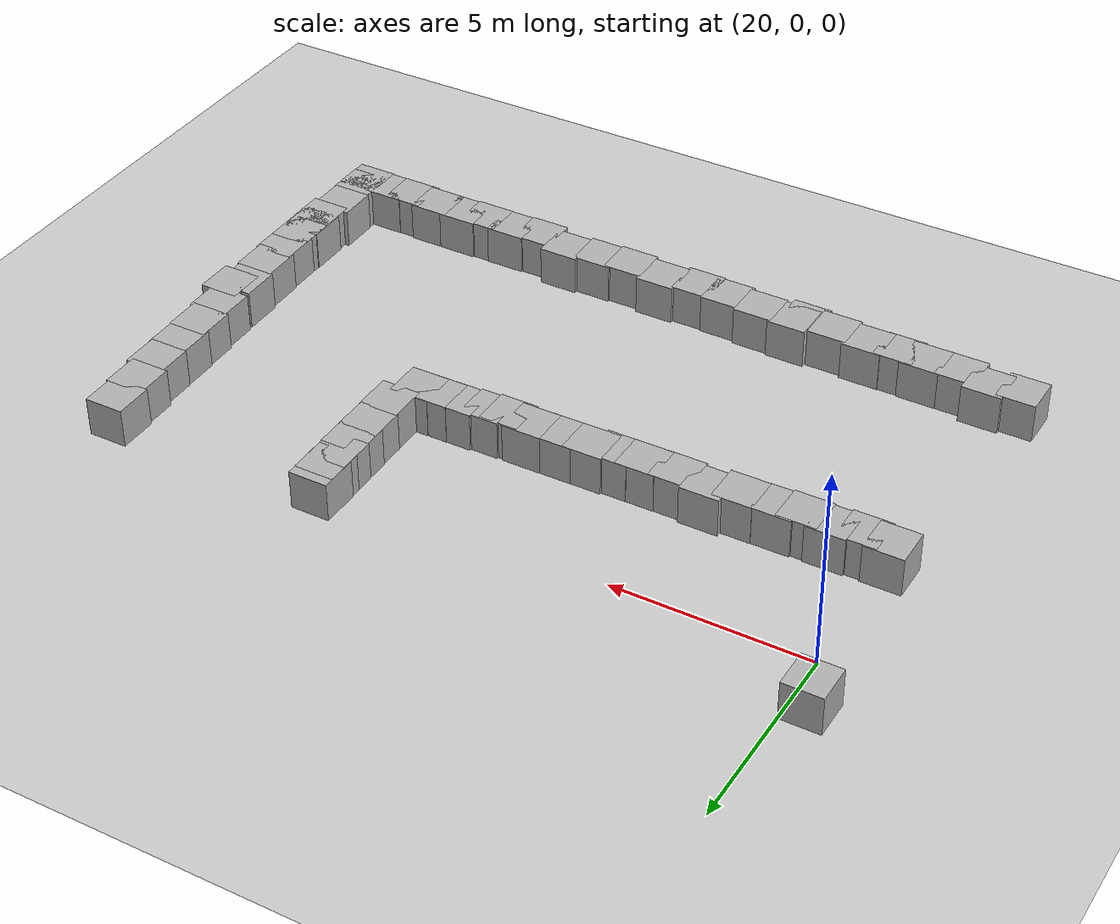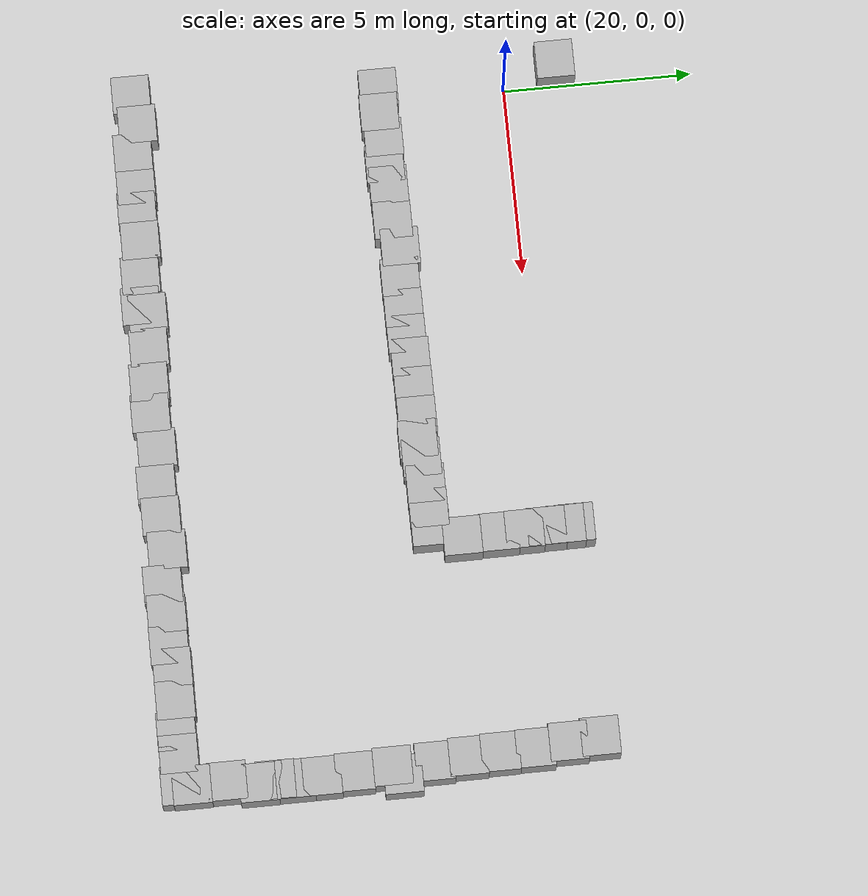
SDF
<sdf version="1.10">
 <world name="empty">
  <model name="ground_plane">
   <static>true</static>
   <link name="link">
    <collision name="collision">
     <geometry><plane><normal>0 0 1</normal><size>100 100</size></plane></geometry>
    </collision>
    <visual name="visual">
     <geometry><plane><normal>0 0 1</normal><size>100 100</size></plane></geometry>
     <material>
      <ambient>0.800000012 0.800000012 0.800000012 1</ambient>
      <diffuse>0.800000012 0.800000012 0.800000012 1</diffuse>
      <specular>0.800000012 0.800000012 0.800000012 1</specular>
     </material>
    </visual>
    <inertial>
     <mass>1</mass>
     <inertia><ixx>1</ixx><ixy>0</ixy><ixz>0</ixz><iyy>1</iyy><iyz>0</iyz><izz>1</izz></inertia>
    </inertial>
   </link>
  </model>
  <model name="box_7_426">
   <pose>19.50084535433934 1.3866616675286716 0.5 0 0 0</pose>
   <link name="box_link">
    <inertial>
     <inertia><ixx>0.16666</ixx><ixy>0</ixy><ixz>0</ixz><iyy>0.16666</iyy><iyz>0</iyz><izz>0.16666</izz></inertia>
     <mass>1</mass>
    </inertial>
    <collision name="box_collision"><geometry><box><size>1 1 1</size></box></geometry></collision>
    <visual name="box_visual">
     <geometry><box><size>1 1 1</size></box></geometry>
     <material>
      <ambient>0.300000012 0.300000012 0.300000012 1</ambient>
      <diffuse>0.699999988 0.699999988 0.699999988 1</diffuse>
      <specular>1 1 1 1</specular>
     </material>
    </visual>
   </link>
   <static>false</static>
  </model>
  <model name="box_7_485">
   <pose>19.835316685579855 -3.3367624371041389 0.5 0 0 0</pose>
   <link name="box_link">
    <inertial>
     <inertia><ixx>0.16666</ixx><ixy>0</ixy><ixz>0</ixz><iyy>0.16666</iyy><iyz>0</iyz><izz>0.16666</izz></inertia>
     <mass>1</mass>
    </inertial>
    <collision name="box_collision"><geometry><box><size>1 1 1</size></box></geometry></collision>
    <visual name="box_visual">
     <geometry><box><size>1 1 1</size></box></geometry>
     <material>
      <ambient>0.300000012 0.300000012 0.300000012 1</ambient>
      <diffuse>0.699999988 0.699999988 0.699999988 1</diffuse>
      <specular>1 1 1 1</specular>
     </material>
    </visual>
   </link>
   <static>false</static>
  </model>
  <model name="box_7_486">
   <pose>20.504908221265296 -3.3723499411950524 0.5 0 0 0</pose>
   <link name="box_link">
    <inertial>
     <inertia><ixx>0.16666</ixx><ixy>0</ixy><ixz>0</ixz><iyy>0.16666</iyy><iyz>0</iyz><izz>0.16666</izz></inertia>
     <mass>1</mass>
    </inertial>
    <collision name="box_collision"><geometry><box><size>1 1 1</size></box></geometry></collision>
    <visual name="box_visual">
     <geometry><box><size>1 1 1</size></box></geometry>
     <material>
      <ambient>0.300000012 0.300000012 0.300000012 1</ambient>
      <diffuse>0.699999988 0.699999988 0.699999988 1</diffuse>
      <specular>1 1 1 1</specular>
     </material>
    </visual>
   </link>
   <static>false</static>
  </model>
  <model name="box_7_487">
   <pose>21.206187132028163 -3.3219261980279322 0.5 0 0 0</pose>
   <link name="box_link">
    <inertial>
     <inertia><ixx>0.16666</ixx><ixy>0</ixy><ixz>0</ixz><iyy>0.16666</iyy><iyz>0</iyz><izz>0.16666</izz></inertia>
     <mass>1</mass>
    </inertial>
    <collision name="box_collision"><geometry><box><size>1 1 1</size></box></geometry></collision>
    <visual name="box_visual">
     <geometry><box><size>1 1 1</size></box></geometry>
     <material>
      <ambient>0.300000012 0.300000012 0.300000012 1</ambient>
      <diffuse>0.699999988 0.699999988 0.699999988 1</diffuse>
      <specular>1 1 1 1</specular>
     </material>
    </visual>
   </link>
   <static>false</static>
  </model>
  <model name="box_7_488">
   <pose>21.917593137765419 -3.3560273518907007 0.5 0 0 0</pose>
   <link name="box_link">
    <inertial>
     <inertia><ixx>0.16666</ixx><ixy>0</ixy><ixz>0</ixz><iyy>0.16666</iyy><iyz>0</iyz><izz>0.16666</izz></inertia>
     <mass>1</mass>
    </inertial>
    <collision name="box_collision"><geometry><box><size>1 1 1</size></box></geometry></collision>
    <visual name="box_visual">
     <geometry><box><size>1 1 1</size></box></geometry>
     <material>
      <ambient>0.300000012 0.300000012 0.300000012 1</ambient>
      <diffuse>0.699999988 0.699999988 0.699999988 1</diffuse>
      <specular>1 1 1 1</specular>
     </material>
    </visual>
   </link>
   <static>false</static>
  </model>
  <model name="box_7_489">
   <pose>22.499907543096491 -3.3070904387312154 0.5 0 0 0</pose>
   <link name="box_link">
    <inertial>
     <inertia><ixx>0.16666</ixx><ixy>0</ixy><ixz>0</ixz><iyy>0.16666</iyy><iyz>0</iyz><izz>0.16666</izz></inertia>
     <mass>1</mass>
    </inertial>
    <collision name="box_collision"><geometry><box><size>1 1 1</size></box></geometry></collision>
    <visual name="box_visual">
     <geometry><box><size>1 1 1</size></box></geometry>
     <material>
      <ambient>0.300000012 0.300000012 0.300000012 1</ambient>
      <diffuse>0.699999988 0.699999988 0.699999988 1</diffuse>
      <specular>1 1 1 1</specular>
     </material>
    </visual>
   </link>
   <static>false</static>
  </model>
  <model name="box_7_490">
   <pose>23.455362474136944 -3.296705270406294 0.5 0 0 0</pose>
   <link name="box_link">
    <inertial>
     <inertia><ixx>0.16666</ixx><ixy>0</ixy><ixz>0</ixz><iyy>0.16666</iyy><iyz>0</iyz><izz>0.16666</izz></inertia>
     <mass>1</mass>
    </inertial>
    <collision name="box_collision"><geometry><box><size>1 1 1</size></box></geometry></collision>
    <visual name="box_visual">
     <geometry><box><size>1 1 1</size></box></geometry>
     <material>
      <ambient>0.300000012 0.300000012 0.300000012 1</ambient>
      <diffuse>0.699999988 0.699999988 0.699999988 1</diffuse>
      <specular>1 1 1 1</specular>
     </material>
    </visual>
   </link>
   <static>false</static>
  </model>
  <model name="box_7_491">
   <pose>24.197470802944345 -3.1632374066188573 0.5 0 0 0</pose>
   <link name="box_link">
    <inertial>
     <inertia><ixx>0.16666</ixx><ixy>0</ixy><ixz>0</ixz><iyy>0.16666</iyy><iyz>0</iyz><izz>0.16666</izz></inertia>
     <mass>1</mass>
    </inertial>
    <collision name="box_collision"><geometry><box><size>1 1 1</size></box></geometry></collision>
    <visual name="box_visual">
     <geometry><box><size>1 1 1</size></box></geometry>
     <material>
      <ambient>0.300000012 0.300000012 0.300000012 1</ambient>
      <diffuse>0.699999988 0.699999988 0.699999988 1</diffuse>
      <specular>1 1 1 1</specular>
     </material>
    </visual>
   </link>
   <static>false</static>
  </model>
  <model name="box_7_492">
   <pose>25.01614728854755 -3.2373603021154267 0.5 0 0 0</pose>
   <link name="box_link">
    <inertial>
     <inertia><ixx>0.16666</ixx><ixy>0</ixy><ixz>0</ixz><iyy>0.16666</iyy><iyz>0</iyz><izz>0.16666</izz></inertia>
     <mass>1</mass>
    </inertial>
    <collision name="box_collision"><geometry><box><size>1 1 1</size></box></geometry></collision>
    <visual name="box_visual">
     <geometry><box><size>1 1 1</size></box></geometry>
     <material>
      <ambient>0.300000012 0.300000012 0.300000012 1</ambient>
      <diffuse>0.699999988 0.699999988 0.699999988 1</diffuse>
      <specular>1 1 1 1</specular>
     </material>
    </visual>
   </link>
   <static>false</static>
  </model>
  <model name="box_7_493">
   <pose>25.852909973870908 -3.2284585578845411 0.5 0 0 0</pose>
   <link name="box_link">
    <inertial>
     <inertia><ixx>0.16666</ixx><ixy>0</ixy><ixz>0</ixz><iyy>0.16666</iyy><iyz>0</iyz><izz>0.16666</izz></inertia>
     <mass>1</mass>
    </inertial>
    <collision name="box_collision"><geometry><box><size>1 1 1</size></box></geometry></collision>
    <visual name="box_visual">
     <geometry><box><size>1 1 1</size></box></geometry>
     <material>
      <ambient>0.300000012 0.300000012 0.300000012 1</ambient>
      <diffuse>0.699999988 0.699999988 0.699999988 1</diffuse>
      <specular>1 1 1 1</specular>
     </material>
    </visual>
   </link>
   <static>false</static>
  </model>
  <model name="box_7_494">
   <pose>26.553184559991816 -3.2210401308741492 0.5 0 0 0</pose>
   <link name="box_link">
    <inertial>
     <inertia><ixx>0.16666</ixx><ixy>0</ixy><ixz>0</ixz><iyy>0.16666</iyy><iyz>0</iyz><izz>0.16666</izz></inertia>
     <mass>1</mass>
    </inertial>
    <collision name="box_collision"><geometry><box><size>1 1 1</size></box></geometry></collision>
    <visual name="box_visual">
     <geometry><box><size>1 1 1</size></box></geometry>
     <material>
      <ambient>0.300000012 0.300000012 0.300000012 1</ambient>
      <diffuse>0.699999988 0.699999988 0.699999988 1</diffuse>
      <specular>1 1 1 1</specular>
     </material>
    </visual>
   </link>
   <static>false</static>
  </model>
  <model name="box_7_495">
   <pose>27.176025728306186 -3.1721383036013862 0.5 0 0 0</pose>
   <link name="box_link">
    <inertial>
     <inertia><ixx>0.16666</ixx><ixy>0</ixy><ixz>0</ixz><iyy>0.16666</iyy><iyz>0</iyz><izz>0.16666</izz></inertia>
     <mass>1</mass>
    </inertial>
    <collision name="box_collision"><geometry><box><size>1 1 1</size></box></geometry></collision>
    <visual name="box_visual">
     <geometry><box><size>1 1 1</size></box></geometry>
     <material>
      <ambient>0.300000012 0.300000012 0.300000012 1</ambient>
      <diffuse>0.699999988 0.699999988 0.699999988 1</diffuse>
      <specular>1 1 1 1</specular>
     </material>
    </visual>
   </link>
   <static>false</static>
  </model>
  <model name="box_7_496">
   <pose>27.965161696103269 -3.1632380496051438 0.5 0 0 0</pose>
   <link name="box_link">
    <inertial>
     <inertia><ixx>0.16666</ixx><ixy>0</ixy><ixz>0</ixz><iyy>0.16666</iyy><iyz>0</iyz><izz>0.16666</izz></inertia>
     <mass>1</mass>
    </inertial>
    <collision name="box_collision"><geometry><box><size>1 1 1</size></box></geometry></collision>
    <visual name="box_visual">
     <geometry><box><size>1 1 1</size></box></geometry>
     <material>
      <ambient>0.300000012 0.300000012 0.300000012 1</ambient>
      <diffuse>0.699999988 0.699999988 0.699999988 1</diffuse>
      <specular>1 1 1 1</specular>
     </material>
    </visual>
   </link>
   <static>false</static>
  </model>
  <model name="box_7_497">
   <pose>28.754297877944541 -3.1543385860947035 0.5 0 0 0</pose>
   <link name="box_link">
    <inertial>
     <inertia><ixx>0.16666</ixx><ixy>0</ixy><ixz>0</ixz><iyy>0.16666</iyy><iyz>0</iyz><izz>0.16666</izz></inertia>
     <mass>1</mass>
    </inertial>
    <collision name="box_collision"><geometry><box><size>1 1 1</size></box></geometry></collision>
    <visual name="box_visual">
     <geometry><box><size>1 1 1</size></box></geometry>
     <material>
      <ambient>0.300000012 0.300000012 0.300000012 1</ambient>
      <diffuse>0.699999988 0.699999988 0.699999988 1</diffuse>
      <specular>1 1 1 1</specular>
     </material>
    </visual>
   </link>
   <static>false</static>
  </model>
  <model name="box_7_498">
   <pose>29.875704523583636 -3.1439541477764958 0.5 0 0 0</pose>
   <link name="box_link">
    <inertial>
     <inertia><ixx>0.16666</ixx><ixy>0</ixy><ixz>0</ixz><iyy>0.16666</iyy><iyz>0</iyz><izz>0.16666</izz></inertia>
     <mass>1</mass>
    </inertial>
    <collision name="box_collision"><geometry><box><size>1 1 1</size></box></geometry></collision>
    <visual name="box_visual">
     <geometry><box><size>1 1 1</size></box></geometry>
     <material>
      <ambient>0.300000012 0.300000012 0.300000012 1</ambient>
      <diffuse>0.699999988 0.699999988 0.699999988 1</diffuse>
      <specular>1 1 1 1</specular>
     </material>
    </visual>
   </link>
   <static>false</static>
  </model>
  <model name="box_7_499">
   <pose>29.378009536321446 -3.1913672510760609 0.5 0 0 0</pose>
   <link name="box_link">
    <inertial>
     <inertia><ixx>0.16666</ixx><ixy>0</ixy><ixz>0</ixz><iyy>0.16666</iyy><iyz>0</iyz><izz>0.16666</izz></inertia>
     <mass>1</mass>
    </inertial>
    <collision name="box_collision"><geometry><box><size>1 1 1</size></box></geometry></collision>
    <visual name="box_visual">
     <geometry><box><size>1 1 1</size></box></geometry>
     <material>
      <ambient>0.300000012 0.300000012 0.300000012 1</ambient>
      <diffuse>0.699999988 0.699999988 0.699999988 1</diffuse>
      <specular>1 1 1 1</specular>
     </material>
    </visual>
   </link>
   <static>false</static>
  </model>
  <model name="box_7_500">
   <pose>30.581775230020487 -3.0950032706503423 0.5 0 0 0</pose>
   <link name="box_link">
    <inertial>
     <inertia><ixx>0.16666</ixx><ixy>0</ixy><ixz>0</ixz><iyy>0.16666</iyy><iyz>0</iyz><izz>0.16666</izz></inertia>
     <mass>1</mass>
    </inertial>
    <collision name="box_collision"><geometry><box><size>1 1 1</size></box></geometry></collision>
    <visual name="box_visual">
     <geometry><box><size>1 1 1</size></box></geometry>
     <material>
      <ambient>0.300000012 0.300000012 0.300000012 1</ambient>
      <diffuse>0.699999988 0.699999988 0.699999988 1</diffuse>
      <specular>1 1 1 1</specular>
     </material>
    </visual>
   </link>
   <static>false</static>
  </model>
  <model name="box_7_501">
   <pose>31.234449285838345 -3.0861042777483636 0.5 0 0 0</pose>
   <link name="box_link">
    <inertial>
     <inertia><ixx>0.16666</ixx><ixy>0</ixy><ixz>0</ixz><iyy>0.16666</iyy><iyz>0</iyz><izz>0.16666</izz></inertia>
     <mass>1</mass>
    </inertial>
    <collision name="box_collision"><geometry><box><size>1 1 1</size></box></geometry></collision>
    <visual name="box_visual">
     <geometry><box><size>1 1 1</size></box></geometry>
     <material>
      <ambient>0.300000012 0.300000012 0.300000012 1</ambient>
      <diffuse>0.699999988 0.699999988 0.699999988 1</diffuse>
      <specular>1 1 1 1</specular>
     </material>
    </visual>
   </link>
   <static>false</static>
  </model>
  <model name="box_7_502">
   <pose>31.732852454886775 -3.0801706274004861 0.5 0 0 0</pose>
   <link name="box_link">
    <inertial>
     <inertia><ixx>0.16666</ixx><ixy>0</ixy><ixz>0</ixz><iyy>0.16666</iyy><iyz>0</iyz><izz>0.16666</izz></inertia>
     <mass>1</mass>
    </inertial>
    <collision name="box_collision"><geometry><box><size>1 1 1</size></box></geometry></collision>
    <visual name="box_visual">
     <geometry><box><size>1 1 1</size></box></geometry>
     <material>
      <ambient>0.300000012 0.300000012 0.300000012 1</ambient>
      <diffuse>0.699999988 0.699999988 0.699999988 1</diffuse>
      <specular>1 1 1 1</specular>
     </material>
    </visual>
   </link>
   <static>false</static>
  </model>
  <model name="box_7_503">
   <pose>32.050619882522398 -2.2822564611692648 0.5 0 0 0</pose>
   <link name="box_link">
    <inertial>
     <inertia><ixx>0.16666</ixx><ixy>0</ixy><ixz>0</ixz><iyy>0.16666</iyy><iyz>0</iyz><izz>0.16666</izz></inertia>
     <mass>1</mass>
    </inertial>
    <collision name="box_collision"><geometry><box><size>1 1 1</size></box></geometry></collision>
    <visual name="box_visual">
     <geometry><box><size>1 1 1</size></box></geometry>
     <material>
      <ambient>0.300000012 0.300000012 0.300000012 1</ambient>
      <diffuse>0.699999988 0.699999988 0.699999988 1</diffuse>
      <specular>1 1 1 1</specular>
     </material>
    </visual>
   </link>
   <static>false</static>
  </model>
  <model name="box_7_504">
   <pose>32.032506917108243 -1.3205692684281383 0.5 0 0 0</pose>
   <link name="box_link">
    <inertial>
     <inertia><ixx>0.16666</ixx><ixy>0</ixy><ixz>0</ixz><iyy>0.16666</iyy><iyz>0</iyz><izz>0.16666</izz></inertia>
     <mass>1</mass>
    </inertial>
    <collision name="box_collision"><geometry><box><size>1 1 1</size></box></geometry></collision>
    <visual name="box_visual">
     <geometry><box><size>1 1 1</size></box></geometry>
     <material>
      <ambient>0.300000012 0.300000012 0.300000012 1</ambient>
      <diffuse>0.699999988 0.699999988 0.699999988 1</diffuse>
      <specular>1 1 1 1</specular>
     </material>
    </visual>
   </link>
   <static>false</static>
  </model>
  <model name="box_7_505">
   <pose>32.019311008043815 -0.65554212112585475 0.5 0 0 0</pose>
   <link name="box_link">
    <inertial>
     <inertia><ixx>0.16666</ixx><ixy>0</ixy><ixz>0</ixz><iyy>0.16666</iyy><iyz>0</iyz><izz>0.16666</izz></inertia>
     <mass>1</mass>
    </inertial>
    <collision name="box_collision"><geometry><box><size>1 1 1</size></box></geometry></collision>
    <visual name="box_visual">
     <geometry><box><size>1 1 1</size></box></geometry>
     <material>
      <ambient>0.300000012 0.300000012 0.300000012 1</ambient>
      <diffuse>0.699999988 0.699999988 0.699999988 1</diffuse>
      <specular>1 1 1 1</specular>
     </material>
    </visual>
   </link>
   <static>false</static>
  </model>
  <model name="box_7_506">
   <pose>32.002660628489288 -0.076296948211255433 0.5 0 0 0</pose>
   <link name="box_link">
    <inertial>
     <inertia><ixx>0.16666</ixx><ixy>0</ixy><ixz>0</ixz><iyy>0.16666</iyy><iyz>0</iyz><izz>0.16666</izz></inertia>
     <mass>1</mass>
    </inertial>
    <collision name="box_collision"><geometry><box><size>1 1 1</size></box></geometry></collision>
    <visual name="box_visual">
     <geometry><box><size>1 1 1</size></box></geometry>
     <material>
      <ambient>0.300000012 0.300000012 0.300000012 1</ambient>
      <diffuse>0.699999988 0.699999988 0.699999988 1</diffuse>
      <specular>1 1 1 1</specular>
     </material>
    </visual>
   </link>
   <static>false</static>
  </model>
  <model name="box_7_507">
   <pose>31.995419167254532 0.42241330259520327 0.5 0 0 0</pose>
   <link name="box_link">
    <inertial>
     <inertia><ixx>0.16666</ixx><ixy>0</ixy><ixz>0</ixz><iyy>0.16666</iyy><iyz>0</iyz><izz>0.16666</izz></inertia>
     <mass>1</mass>
    </inertial>
    <collision name="box_collision"><geometry><box><size>1 1 1</size></box></geometry></collision>
    <visual name="box_visual">
     <geometry><box><size>1 1 1</size></box></geometry>
     <material>
      <ambient>0.300000012 0.300000012 0.300000012 1</ambient>
      <diffuse>0.699999988 0.699999988 0.699999988 1</diffuse>
      <specular>1 1 1 1</specular>
     </material>
    </visual>
   </link>
   <static>false</static>
  </model>
  <model name="box_7_508">
   <pose>31.987117330431637 0.66992297948979251 0.5 0 0 0</pose>
   <link name="box_link">
    <inertial>
     <inertia><ixx>0.16666</ixx><ixy>0</ixy><ixz>0</ixz><iyy>0.16666</iyy><iyz>0</iyz><izz>0.16666</izz></inertia>
     <mass>1</mass>
    </inertial>
    <collision name="box_collision"><geometry><box><size>1 1 1</size></box></geometry></collision>
    <visual name="box_visual">
     <geometry><box><size>1 1 1</size></box></geometry>
     <material>
      <ambient>0.300000012 0.300000012 0.300000012 1</ambient>
      <diffuse>0.699999988 0.699999988 0.699999988 1</diffuse>
      <specular>1 1 1 1</specular>
     </material>
    </visual>
   </link>
   <static>false</static>
  </model>
  <model name="box_7_510">
   <pose>37.62682388788928 0.75644193351323619 0.5 0 0 0</pose>
   <link name="box_link">
    <inertial>
     <inertia><ixx>0.16666</ixx><ixy>0</ixy><ixz>0</ixz><iyy>0.16666</iyy><iyz>0</iyz><izz>0.16666</izz></inertia>
     <mass>1</mass>
    </inertial>
    <collision name="box_collision"><geometry><box><size>1 1 1</size></box></geometry></collision>
    <visual name="box_visual">
     <geometry><box><size>1 1 1</size></box></geometry>
     <material>
      <ambient>0.300000012 0.300000012 0.300000012 1</ambient>
      <diffuse>0.699999988 0.699999988 0.699999988 1</diffuse>
      <specular>1 1 1 1</specular>
     </material>
    </visual>
   </link>
   <static>false</static>
  </model>
  <model name="box_7_511">
   <pose>37.680546073106434 -0.069666408435608229 0.5 0 0 0</pose>
   <link name="box_link">
    <inertial>
     <inertia><ixx>0.16666</ixx><ixy>0</ixy><ixz>0</ixz><iyy>0.16666</iyy><iyz>0</iyz><izz>0.16666</izz></inertia>
     <mass>1</mass>
    </inertial>
    <collision name="box_collision"><geometry><box><size>1 1 1</size></box></geometry></collision>
    <visual name="box_visual">
     <geometry><box><size>1 1 1</size></box></geometry>
     <material>
      <ambient>0.300000012 0.300000012 0.300000012 1</ambient>
      <diffuse>0.699999988 0.699999988 0.699999988 1</diffuse>
      <specular>1 1 1 1</specular>
     </material>
    </visual>
   </link>
   <static>false</static>
  </model>
  <model name="box_7_512">
   <pose>37.771591950479184 -0.93952264910955829 0.5 0 0 0</pose>
   <link name="box_link">
    <inertial>
     <inertia><ixx>0.16666</ixx><ixy>0</ixy><ixz>0</ixz><iyy>0.16666</iyy><iyz>0</iyz><izz>0.16666</izz></inertia>
     <mass>1</mass>
    </inertial>
    <collision name="box_collision"><geometry><box><size>1 1 1</size></box></geometry></collision>
    <visual name="box_visual">
     <geometry><box><size>1 1 1</size></box></geometry>
     <material>
      <ambient>0.300000012 0.300000012 0.300000012 1</ambient>
      <diffuse>0.699999988 0.699999988 0.699999988 1</diffuse>
      <specular>1 1 1 1</specular>
     </material>
    </visual>
   </link>
   <static>false</static>
  </model>
  <model name="box_7_513">
   <pose>37.789335657210316 -1.8524514860703727 0.5 0 0 0</pose>
   <link name="box_link">
    <inertial>
     <inertia><ixx>0.16666</ixx><ixy>0</ixy><ixz>0</ixz><iyy>0.16666</iyy><iyz>0</iyz><izz>0.16666</izz></inertia>
     <mass>1</mass>
    </inertial>
    <collision name="box_collision"><geometry><box><size>1 1 1</size></box></geometry></collision>
    <visual name="box_visual">
     <geometry><box><size>1 1 1</size></box></geometry>
     <material>
      <ambient>0.300000012 0.300000012 0.300000012 1</ambient>
      <diffuse>0.699999988 0.699999988 0.699999988 1</diffuse>
      <specular>1 1 1 1</specular>
     </material>
    </visual>
   </link>
   <static>false</static>
  </model>
  <model name="box_7_514">
   <pose>37.819833014596696 -2.6858046116926229 0.5 0 0 0</pose>
   <link name="box_link">
    <inertial>
     <inertia><ixx>0.16666</ixx><ixy>0</ixy><ixz>0</ixz><iyy>0.16666</iyy><iyz>0</iyz><izz>0.16666</izz></inertia>
     <mass>1</mass>
    </inertial>
    <collision name="box_collision"><geometry><box><size>1 1 1</size></box></geometry></collision>
    <visual name="box_visual">
     <geometry><box><size>1 1 1</size></box></geometry>
     <material>
      <ambient>0.300000012 0.300000012 0.300000012 1</ambient>
      <diffuse>0.699999988 0.699999988 0.699999988 1</diffuse>
      <specular>1 1 1 1</specular>
     </material>
    </visual>
   </link>
   <static>false</static>
  </model>
  <model name="box_7_515">
   <pose>37.873333574441439 -3.5621481141474343 0.5 0 0 0</pose>
   <link name="box_link">
    <inertial>
     <inertia><ixx>0.16666</ixx><ixy>0</ixy><ixz>0</ixz><iyy>0.16666</iyy><iyz>0</iyz><izz>0.16666</izz></inertia>
     <mass>1</mass>
    </inertial>
    <collision name="box_collision"><geometry><box><size>1 1 1</size></box></geometry></collision>
    <visual name="box_visual">
     <geometry><box><size>1 1 1</size></box></geometry>
     <material>
      <ambient>0.300000012 0.300000012 0.300000012 1</ambient>
      <diffuse>0.699999988 0.699999988 0.699999988 1</diffuse>
      <specular>1 1 1 1</specular>
     </material>
    </visual>
   </link>
   <static>false</static>
  </model>
  <model name="box_7_516">
   <pose>37.894769195070694 -4.6545146092326455 0.5 0 0 0</pose>
   <link name="box_link">
    <inertial>
     <inertia><ixx>0.16666</ixx><ixy>0</ixy><ixz>0</ixz><iyy>0.16666</iyy><iyz>0</iyz><izz>0.16666</izz></inertia>
     <mass>1</mass>
    </inertial>
    <collision name="box_collision"><geometry><box><size>1 1 1</size></box></geometry></collision>
    <visual name="box_visual">
     <geometry><box><size>1 1 1</size></box></geometry>
     <material>
      <ambient>0.300000012 0.300000012 0.300000012 1</ambient>
      <diffuse>0.699999988 0.699999988 0.699999988 1</diffuse>
      <specular>1 1 1 1</specular>
     </material>
    </visual>
   </link>
   <static>false</static>
  </model>
  <model name="box_7_517">
   <pose>38.131023976680062 -4.4003867220660462 0.5 0 0 0</pose>
   <link name="box_link">
    <inertial>
     <inertia><ixx>0.16666</ixx><ixy>0</ixy><ixz>0</ixz><iyy>0.16666</iyy><iyz>0</iyz><izz>0.16666</izz></inertia>
     <mass>1</mass>
    </inertial>
    <collision name="box_collision"><geometry><box><size>1 1 1</size></box></geometry></collision>
    <visual name="box_visual">
     <geometry><box><size>1 1 1</size></box></geometry>
     <material>
      <ambient>0.300000012 0.300000012 0.300000012 1</ambient>
      <diffuse>0.699999988 0.699999988 0.699999988 1</diffuse>
      <specular>1 1 1 1</specular>
     </material>
    </visual>
   </link>
   <static>false</static>
  </model>
  <model name="box_7_518">
   <pose>37.948041646962125 -5.6407223219584868 0.5 0 0 0</pose>
   <link name="box_link">
    <inertial>
     <inertia><ixx>0.16666</ixx><ixy>0</ixy><ixz>0</ixz><iyy>0.16666</iyy><iyz>0</iyz><izz>0.16666</izz></inertia>
     <mass>1</mass>
    </inertial>
    <collision name="box_collision"><geometry><box><size>1 1 1</size></box></geometry></collision>
    <visual name="box_visual">
     <geometry><box><size>1 1 1</size></box></geometry>
     <material>
      <ambient>0.300000012 0.300000012 0.300000012 1</ambient>
      <diffuse>0.699999988 0.699999988 0.699999988 1</diffuse>
      <specular>1 1 1 1</specular>
     </material>
    </visual>
   </link>
   <static>false</static>
  </model>
  <model name="box_7_519">
   <pose>37.979358007607424 -6.4914270135828547 0.5 0 0 0</pose>
   <link name="box_link">
    <inertial>
     <inertia><ixx>0.16666</ixx><ixy>0</ixy><ixz>0</ixz><iyy>0.16666</iyy><iyz>0</iyz><izz>0.16666</izz></inertia>
     <mass>1</mass>
    </inertial>
    <collision name="box_collision"><geometry><box><size>1 1 1</size></box></geometry></collision>
    <visual name="box_visual">
     <geometry><box><size>1 1 1</size></box></geometry>
     <material>
      <ambient>0.300000012 0.300000012 0.300000012 1</ambient>
      <diffuse>0.699999988 0.699999988 0.699999988 1</diffuse>
      <specular>1 1 1 1</specular>
     </material>
    </visual>
   </link>
   <static>false</static>
  </model>
  <model name="box_7_520">
   <pose>37.98140610669045 -7.1881874978806453 0.5 0 0 0</pose>
   <link name="box_link">
    <inertial>
     <inertia><ixx>0.16666</ixx><ixy>0</ixy><ixz>0</ixz><iyy>0.16666</iyy><iyz>0</iyz><izz>0.16666</izz></inertia>
     <mass>1</mass>
    </inertial>
    <collision name="box_collision"><geometry><box><size>1 1 1</size></box></geometry></collision>
    <visual name="box_visual">
     <geometry><box><size>1 1 1</size></box></geometry>
     <material>
      <ambient>0.300000012 0.300000012 0.300000012 1</ambient>
      <diffuse>0.699999988 0.699999988 0.699999988 1</diffuse>
      <specular>1 1 1 1</specular>
     </material>
    </visual>
   </link>
   <static>false</static>
  </model>
  <model name="box_7_521">
   <pose>37.964466239220584 -7.6882104076068289 0.5 0 0 0</pose>
   <link name="box_link">
    <inertial>
     <inertia><ixx>0.16666</ixx><ixy>0</ixy><ixz>0</ixz><iyy>0.16666</iyy><iyz>0</iyz><izz>0.16666</izz></inertia>
     <mass>1</mass>
    </inertial>
    <collision name="box_collision"><geometry><box><size>1 1 1</size></box></geometry></collision>
    <visual name="box_visual">
     <geometry><box><size>1 1 1</size></box></geometry>
     <material>
      <ambient>0.300000012 0.300000012 0.300000012 1</ambient>
      <diffuse>0.699999988 0.699999988 0.699999988 1</diffuse>
      <specular>1 1 1 1</specular>
     </material>
    </visual>
   </link>
   <static>false</static>
  </model>
  <model name="box_7_522">
   <pose>37.991720077730996 -8.1286699711971835 0.5 0 0 0</pose>
   <link name="box_link">
    <inertial>
     <inertia><ixx>0.16666</ixx><ixy>0</ixy><ixz>0</ixz><iyy>0.16666</iyy><iyz>0</iyz><izz>0.16666</izz></inertia>
     <mass>1</mass>
    </inertial>
    <collision name="box_collision"><geometry><box><size>1 1 1</size></box></geometry></collision>
    <visual name="box_visual">
     <geometry><box><size>1 1 1</size></box></geometry>
     <material>
      <ambient>0.300000012 0.300000012 0.300000012 1</ambient>
      <diffuse>0.699999988 0.699999988 0.699999988 1</diffuse>
      <specular>1 1 1 1</specular>
     </material>
    </visual>
   </link>
   <static>false</static>
  </model>
  <model name="box_7_523">
   <pose>37.878462177987075 -8.9370469714732721 0.5 0 0 0</pose>
   <link name="box_link">
    <inertial>
     <inertia><ixx>0.16666</ixx><ixy>0</ixy><ixz>0</ixz><iyy>0.16666</iyy><iyz>0</iyz><izz>0.16666</izz></inertia>
     <mass>1</mass>
    </inertial>
    <collision name="box_collision"><geometry><box><size>1 1 1</size></box></geometry></collision>
    <visual name="box_visual">
     <geometry><box><size>1 1 1</size></box></geometry>
     <material>
      <ambient>0.300000012 0.300000012 0.300000012 1</ambient>
      <diffuse>0.699999988 0.699999988 0.699999988 1</diffuse>
      <specular>1 1 1 1</specular>
     </material>
    </visual>
   </link>
   <static>false</static>
  </model>
  <model name="box_7_524">
   <pose>37.898228589444571 -9.8575093151611863 0.5 0 0 0</pose>
   <link name="box_link">
    <inertial>
     <inertia><ixx>0.16666</ixx><ixy>0</ixy><ixz>0</ixz><iyy>0.16666</iyy><iyz>0</iyz><izz>0.16666</izz></inertia>
     <mass>1</mass>
    </inertial>
    <collision name="box_collision"><geometry><box><size>1 1 1</size></box></geometry></collision>
    <visual name="box_visual">
     <geometry><box><size>1 1 1</size></box></geometry>
     <material>
      <ambient>0.300000012 0.300000012 0.300000012 1</ambient>
      <diffuse>0.699999988 0.699999988 0.699999988 1</diffuse>
      <specular>1 1 1 1</specular>
     </material>
    </visual>
   </link>
   <static>false</static>
  </model>
  <model name="box_7_534">
   <pose>19.416333918764462 -9.86703315857695 0.5 0 0 0</pose>
   <link name="box_link">
    <inertial>
     <inertia><ixx>0.16666</ixx><ixy>0</ixy><ixz>0</ixz><iyy>0.16666</iyy><iyz>0</iyz><izz>0.16666</izz></inertia>
     <mass>1</mass>
    </inertial>
    <collision name="box_collision"><geometry><box><size>1 1 1</size></box></geometry></collision>
    <visual name="box_visual">
     <geometry><box><size>1 1 1</size></box></geometry>
     <material>
      <ambient>0.300000012 0.300000012 0.300000012 1</ambient>
      <diffuse>0.699999988 0.699999988 0.699999988 1</diffuse>
      <specular>1 1 1 1</specular>
     </material>
    </visual>
   </link>
   <static>false</static>
  </model>
  <model name="box_7_535">
   <pose>20.233840810125773 -9.7669830818620191 0.5 0 0 0</pose>
   <link name="box_link">
    <inertial>
     <inertia><ixx>0.16666</ixx><ixy>0</ixy><ixz>0</ixz><iyy>0.16666</iyy><iyz>0</iyz><izz>0.16666</izz></inertia>
     <mass>1</mass>
    </inertial>
    <collision name="box_collision"><geometry><box><size>1 1 1</size></box></geometry></collision>
    <visual name="box_visual">
     <geometry><box><size>1 1 1</size></box></geometry>
     <material>
      <ambient>0.300000012 0.300000012 0.300000012 1</ambient>
      <diffuse>0.699999988 0.699999988 0.699999988 1</diffuse>
      <specular>1 1 1 1</specular>
     </material>
    </visual>
   </link>
   <static>false</static>
  </model>
  <model name="box_7_536">
   <pose>20.987256618147093 -9.9473340215949424 0.5 0 0 0</pose>
   <link name="box_link">
    <inertial>
     <inertia><ixx>0.16666</ixx><ixy>0</ixy><ixz>0</ixz><iyy>0.16666</iyy><iyz>0</iyz><izz>0.16666</izz></inertia>
     <mass>1</mass>
    </inertial>
    <collision name="box_collision"><geometry><box><size>1 1 1</size></box></geometry></collision>
    <visual name="box_visual">
     <geometry><box><size>1 1 1</size></box></geometry>
     <material>
      <ambient>0.300000012 0.300000012 0.300000012 1</ambient>
      <diffuse>0.699999988 0.699999988 0.699999988 1</diffuse>
      <specular>1 1 1 1</specular>
     </material>
    </visual>
   </link>
   <static>false</static>
  </model>
  <model name="box_7_537">
   <pose>21.892479291226284 -9.9429819241125372 0.5 0 0 0</pose>
   <link name="box_link">
    <inertial>
     <inertia><ixx>0.16666</ixx><ixy>0</ixy><ixz>0</ixz><iyy>0.16666</iyy><iyz>0</iyz><izz>0.16666</izz></inertia>
     <mass>1</mass>
    </inertial>
    <collision name="box_collision"><geometry><box><size>1 1 1</size></box></geometry></collision>
    <visual name="box_visual">
     <geometry><box><size>1 1 1</size></box></geometry>
     <material>
      <ambient>0.300000012 0.300000012 0.300000012 1</ambient>
      <diffuse>0.699999988 0.699999988 0.699999988 1</diffuse>
      <specular>1 1 1 1</specular>
     </material>
    </visual>
   </link>
   <static>false</static>
  </model>
  <model name="box_7_538">
   <pose>22.580914374540647 -9.9732882609714473 0.5 0 0 0</pose>
   <link name="box_link">
    <inertial>
     <inertia><ixx>0.16666</ixx><ixy>0</ixy><ixz>0</ixz><iyy>0.16666</iyy><iyz>0</iyz><izz>0.16666</izz></inertia>
     <mass>1</mass>
    </inertial>
    <collision name="box_collision"><geometry><box><size>1 1 1</size></box></geometry></collision>
    <visual name="box_visual">
     <geometry><box><size>1 1 1</size></box></geometry>
     <material>
      <ambient>0.300000012 0.300000012 0.300000012 1</ambient>
      <diffuse>0.699999988 0.699999988 0.699999988 1</diffuse>
      <specular>1 1 1 1</specular>
     </material>
    </visual>
   </link>
   <static>false</static>
  </model>
  <model name="box_7_539">
   <pose>23.389355330484509 -9.9558615311470309 0.5 0 0 0</pose>
   <link name="box_link">
    <inertial>
     <inertia><ixx>0.16666</ixx><ixy>0</ixy><ixz>0</ixz><iyy>0.16666</iyy><iyz>0</iyz><izz>0.16666</izz></inertia>
     <mass>1</mass>
    </inertial>
    <collision name="box_collision"><geometry><box><size>1 1 1</size></box></geometry></collision>
    <visual name="box_visual">
     <geometry><box><size>1 1 1</size></box></geometry>
     <material>
      <ambient>0.300000012 0.300000012 0.300000012 1</ambient>
      <diffuse>0.699999988 0.699999988 0.699999988 1</diffuse>
      <specular>1 1 1 1</specular>
     </material>
    </visual>
   </link>
   <static>false</static>
  </model>
  <model name="box_7_540">
   <pose>24.319526162362585 -10.03110942145209 0.5 0 0 0</pose>
   <link name="box_link">
    <inertial>
     <inertia><ixx>0.16666</ixx><ixy>0</ixy><ixz>0</ixz><iyy>0.16666</iyy><iyz>0</iyz><izz>0.16666</izz></inertia>
     <mass>1</mass>
    </inertial>
    <collision name="box_collision"><geometry><box><size>1 1 1</size></box></geometry></collision>
    <visual name="box_visual">
     <geometry><box><size>1 1 1</size></box></geometry>
     <material>
      <ambient>0.300000012 0.300000012 0.300000012 1</ambient>
      <diffuse>0.699999988 0.699999988 0.699999988 1</diffuse>
      <specular>1 1 1 1</specular>
     </material>
    </visual>
   </link>
   <static>false</static>
  </model>
  <model name="box_7_541">
   <pose>25.346048958588376 -9.9239009315956412 0.5 0 0 0</pose>
   <link name="box_link">
    <inertial>
     <inertia><ixx>0.16666</ixx><ixy>0</ixy><ixz>0</ixz><iyy>0.16666</iyy><iyz>0</iyz><izz>0.16666</izz></inertia>
     <mass>1</mass>
    </inertial>
    <collision name="box_collision"><geometry><box><size>1 1 1</size></box></geometry></collision>
    <visual name="box_visual">
     <geometry><box><size>1 1 1</size></box></geometry>
     <material>
      <ambient>0.300000012 0.300000012 0.300000012 1</ambient>
      <diffuse>0.699999988 0.699999988 0.699999988 1</diffuse>
      <specular>1 1 1 1</specular>
     </material>
    </visual>
   </link>
   <static>false</static>
  </model>
  <model name="box_7_542">
   <pose>25.147515247094454 -10.093440508665488 0.5 0 0 0</pose>
   <link name="box_link">
    <inertial>
     <inertia><ixx>0.16666</ixx><ixy>0</ixy><ixz>0</ixz><iyy>0.16666</iyy><iyz>0</iyz><izz>0.16666</izz></inertia>
     <mass>1</mass>
    </inertial>
    <collision name="box_collision"><geometry><box><size>1 1 1</size></box></geometry></collision>
    <visual name="box_visual">
     <geometry><box><size>1 1 1</size></box></geometry>
     <material>
      <ambient>0.300000012 0.300000012 0.300000012 1</ambient>
      <diffuse>0.699999988 0.699999988 0.699999988 1</diffuse>
      <specular>1 1 1 1</specular>
     </material>
    </visual>
   </link>
   <static>false</static>
  </model>
  <model name="box_7_543">
   <pose>26.274541481212889 -9.974667677468867 0.5 0 0 0</pose>
   <link name="box_link">
    <inertial>
     <inertia><ixx>0.16666</ixx><ixy>0</ixy><ixz>0</ixz><iyy>0.16666</iyy><iyz>0</iyz><izz>0.16666</izz></inertia>
     <mass>1</mass>
    </inertial>
    <collision name="box_collision"><geometry><box><size>1 1 1</size></box></geometry></collision>
    <visual name="box_visual">
     <geometry><box><size>1 1 1</size></box></geometry>
     <material>
      <ambient>0.300000012 0.300000012 0.300000012 1</ambient>
      <diffuse>0.699999988 0.699999988 0.699999988 1</diffuse>
      <specular>1 1 1 1</specular>
     </material>
    </visual>
   </link>
   <static>false</static>
  </model>
  <model name="box_7_544">
   <pose>27.205538193006163 -10.048190236159588 0.5 0 0 0</pose>
   <link name="box_link">
    <inertial>
     <inertia><ixx>0.16666</ixx><ixy>0</ixy><ixz>0</ixz><iyy>0.16666</iyy><iyz>0</iyz><izz>0.16666</izz></inertia>
     <mass>1</mass>
    </inertial>
    <collision name="box_collision"><geometry><box><size>1 1 1</size></box></geometry></collision>
    <visual name="box_visual">
     <geometry><box><size>1 1 1</size></box></geometry>
     <material>
      <ambient>0.300000012 0.300000012 0.300000012 1</ambient>
      <diffuse>0.699999988 0.699999988 0.699999988 1</diffuse>
      <specular>1 1 1 1</specular>
     </material>
    </visual>
   </link>
   <static>false</static>
  </model>
  <model name="box_7_545">
   <pose>28.036031930781096 -10.084059382994189 0.5 0 0 0</pose>
   <link name="box_link">
    <inertial>
     <inertia><ixx>0.16666</ixx><ixy>0</ixy><ixz>0</ixz><iyy>0.16666</iyy><iyz>0</iyz><izz>0.16666</izz></inertia>
     <mass>1</mass>
    </inertial>
    <collision name="box_collision"><geometry><box><size>1 1 1</size></box></geometry></collision>
    <visual name="box_visual">
     <geometry><box><size>1 1 1</size></box></geometry>
     <material>
      <ambient>0.300000012 0.300000012 0.300000012 1</ambient>
      <diffuse>0.699999988 0.699999988 0.699999988 1</diffuse>
      <specular>1 1 1 1</specular>
     </material>
    </visual>
   </link>
   <static>false</static>
  </model>
  <model name="box_7_546">
   <pose>28.976936435620807 -9.9959169292281498 0.5 0 0 0</pose>
   <link name="box_link">
    <inertial>
     <inertia><ixx>0.16666</ixx><ixy>0</ixy><ixz>0</ixz><iyy>0.16666</iyy><iyz>0</iyz><izz>0.16666</izz></inertia>
     <mass>1</mass>
    </inertial>
    <collision name="box_collision"><geometry><box><size>1 1 1</size></box></geometry></collision>
    <visual name="box_visual">
     <geometry><box><size>1 1 1</size></box></geometry>
     <material>
      <ambient>0.300000012 0.300000012 0.300000012 1</ambient>
      <diffuse>0.699999988 0.699999988 0.699999988 1</diffuse>
      <specular>1 1 1 1</specular>
     </material>
    </visual>
   </link>
   <static>false</static>
  </model>
  <model name="box_7_547">
   <pose>29.944080916394626 -10.094499825317762 0.5 0 0 0</pose>
   <link name="box_link">
    <inertial>
     <inertia><ixx>0.16666</ixx><ixy>0</ixy><ixz>0</ixz><iyy>0.16666</iyy><iyz>0</iyz><izz>0.16666</izz></inertia>
     <mass>1</mass>
    </inertial>
    <collision name="box_collision"><geometry><box><size>1 1 1</size></box></geometry></collision>
    <visual name="box_visual">
     <geometry><box><size>1 1 1</size></box></geometry>
     <material>
      <ambient>0.300000012 0.300000012 0.300000012 1</ambient>
      <diffuse>0.699999988 0.699999988 0.699999988 1</diffuse>
      <specular>1 1 1 1</specular>
     </material>
    </visual>
   </link>
   <static>false</static>
  </model>
  <model name="box_7_548">
   <pose>30.787071932419494 -10.046450968157576 0.5 0 0 0</pose>
   <link name="box_link">
    <inertial>
     <inertia><ixx>0.16666</ixx><ixy>0</ixy><ixz>0</ixz><iyy>0.16666</iyy><iyz>0</iyz><izz>0.16666</izz></inertia>
     <mass>1</mass>
    </inertial>
    <collision name="box_collision"><geometry><box><size>1 1 1</size></box></geometry></collision>
    <visual name="box_visual">
     <geometry><box><size>1 1 1</size></box></geometry>
     <material>
      <ambient>0.300000012 0.300000012 0.300000012 1</ambient>
      <diffuse>0.699999988 0.699999988 0.699999988 1</diffuse>
      <specular>1 1 1 1</specular>
     </material>
    </visual>
   </link>
   <static>false</static>
  </model>
  <model name="box_7_549">
   <pose>31.69824388945154 -9.9598625406224954 0.5 0 0 0</pose>
   <link name="box_link">
    <inertial>
     <inertia><ixx>0.16666</ixx><ixy>0</ixy><ixz>0</ixz><iyy>0.16666</iyy><iyz>0</iyz><izz>0.16666</izz></inertia>
     <mass>1</mass>
    </inertial>
    <collision name="box_collision"><geometry><box><size>1 1 1</size></box></geometry></collision>
    <visual name="box_visual">
     <geometry><box><size>1 1 1</size></box></geometry>
     <material>
      <ambient>0.300000012 0.300000012 0.300000012 1</ambient>
      <diffuse>0.699999988 0.699999988 0.699999988 1</diffuse>
      <specular>1 1 1 1</specular>
     </material>
    </visual>
   </link>
   <static>false</static>
  </model>
  <model name="box_7_550">
   <pose>32.597668279924278 -10.153638143544992 0.5 0 0 0</pose>
   <link name="box_link">
    <inertial>
     <inertia><ixx>0.16666</ixx><ixy>0</ixy><ixz>0</ixz><iyy>0.16666</iyy><iyz>0</iyz><izz>0.16666</izz></inertia>
     <mass>1</mass>
    </inertial>
    <collision name="box_collision"><geometry><box><size>1 1 1</size></box></geometry></collision>
    <visual name="box_visual">
     <geometry><box><size>1 1 1</size></box></geometry>
     <material>
      <ambient>0.300000012 0.300000012 0.300000012 1</ambient>
      <diffuse>0.699999988 0.699999988 0.699999988 1</diffuse>
      <specular>1 1 1 1</specular>
     </material>
    </visual>
   </link>
   <static>false</static>
  </model>
  <model name="box_7_551">
   <pose>33.361466405676907 -10.11660005673672 0.5 0 0 0</pose>
   <link name="box_link">
    <inertial>
     <inertia><ixx>0.16666</ixx><ixy>0</ixy><ixz>0</ixz><iyy>0.16666</iyy><iyz>0</iyz><izz>0.16666</izz></inertia>
     <mass>1</mass>
    </inertial>
    <collision name="box_collision"><geometry><box><size>1 1 1</size></box></geometry></collision>
    <visual name="box_visual">
     <geometry><box><size>1 1 1</size></box></geometry>
     <material>
      <ambient>0.300000012 0.300000012 0.300000012 1</ambient>
      <diffuse>0.699999988 0.699999988 0.699999988 1</diffuse>
      <specular>1 1 1 1</specular>
     </material>
    </visual>
   </link>
   <static>false</static>
  </model>
  <model name="box_7_552">
   <pose>34.202144248301543 -10.126320306282565 0.5 0 0 0</pose>
   <link name="box_link">
    <inertial>
     <inertia><ixx>0.16666</ixx><ixy>0</ixy><ixz>0</ixz><iyy>0.16666</iyy><iyz>0</iyz><izz>0.16666</izz></inertia>
     <mass>1</mass>
    </inertial>
    <collision name="box_collision"><geometry><box><size>1 1 1</size></box></geometry></collision>
    <visual name="box_visual">
     <geometry><box><size>1 1 1</size></box></geometry>
     <material>
      <ambient>0.300000012 0.300000012 0.300000012 1</ambient>
      <diffuse>0.699999988 0.699999988 0.699999988 1</diffuse>
      <specular>1 1 1 1</specular>
     </material>
    </visual>
   </link>
   <static>false</static>
  </model>
  <model name="box_7_553">
   <pose>34.788279095318487 -10.089710982613155 0.5 0 0 0</pose>
   <link name="box_link">
    <inertial>
     <inertia><ixx>0.16666</ixx><ixy>0</ixy><ixz>0</ixz><iyy>0.16666</iyy><iyz>0</iyz><izz>0.16666</izz></inertia>
     <mass>1</mass>
    </inertial>
    <collision name="box_collision"><geometry><box><size>1 1 1</size></box></geometry></collision>
    <visual name="box_visual">
     <geometry><box><size>1 1 1</size></box></geometry>
     <material>
      <ambient>0.300000012 0.300000012 0.300000012 1</ambient>
      <diffuse>0.699999988 0.699999988 0.699999988 1</diffuse>
      <specular>1 1 1 1</specular>
     </material>
    </visual>
   </link>
   <static>false</static>
  </model>
  <model name="box_7_554">
   <pose>35.645409412455791 -10.093990141533924 0.5 0 0 0</pose>
   <link name="box_link">
    <inertial>
     <inertia><ixx>0.16666</ixx><ixy>0</ixy><ixz>0</ixz><iyy>0.16666</iyy><iyz>0</iyz><izz>0.16666</izz></inertia>
     <mass>1</mass>
    </inertial>
    <collision name="box_collision"><geometry><box><size>1 1 1</size></box></geometry></collision>
    <visual name="box_visual">
     <geometry><box><size>1 1 1</size></box></geometry>
     <material>
      <ambient>0.300000012 0.300000012 0.300000012 1</ambient>
      <diffuse>0.699999988 0.699999988 0.699999988 1</diffuse>
      <specular>1 1 1 1</specular>
     </material>
    </visual>
   </link>
   <static>false</static>
  </model>
  <model name="box_7_555">
   <pose>36.461862198477668 -10.132751776193457 0.5 0 0 0</pose>
   <link name="box_link">
    <inertial>
     <inertia><ixx>0.16666</ixx><ixy>0</ixy><ixz>0</ixz><iyy>0.16666</iyy><iyz>0</iyz><izz>0.16666</izz></inertia>
     <mass>1</mass>
    </inertial>
    <collision name="box_collision"><geometry><box><size>1 1 1</size></box></geometry></collision>
    <visual name="box_visual">
     <geometry><box><size>1 1 1</size></box></geometry>
     <material>
      <ambient>0.300000012 0.300000012 0.300000012 1</ambient>
      <diffuse>0.699999988 0.699999988 0.699999988 1</diffuse>
      <specular>1 1 1 1</specular>
     </material>
    </visual>
   </link>
   <static>false</static>
  </model>
  <model name="box_7_556">
   <pose>37.057330210818215 -10.124085812434112 0.5 0 0 0</pose>
   <link name="box_link">
    <inertial>
     <inertia><ixx>0.16666</ixx><ixy>0</ixy><ixz>0</ixz><iyy>0.16666</iyy><iyz>0</iyz><izz>0.16666</izz></inertia>
     <mass>1</mass>
    </inertial>
    <collision name="box_collision"><geometry><box><size>1 1 1</size></box></geometry></collision>
    <visual name="box_visual">
     <geometry><box><size>1 1 1</size></box></geometry>
     <material>
      <ambient>0.300000012 0.300000012 0.300000012 1</ambient>
      <diffuse>0.699999988 0.699999988 0.699999988 1</diffuse>
      <specular>1 1 1 1</specular>
     </material>
    </visual>
   </link>
   <static>false</static>
  </model>
  <model name="box_7_525">
   <pose>37.877398742543569 -10.150540092304823 0.5 0 0 0</pose>
   <link name="box_link">
    <inertial>
     <inertia><ixx>0.16666</ixx><ixy>0</ixy><ixz>0</ixz><iyy>0.16666</iyy><iyz>0</iyz><izz>0.16666</izz></inertia>
     <mass>1</mass>
    </inertial>
    <collision name="box_collision"><geometry><box><size>1 1 1</size></box></geometry></collision>
    <visual name="box_visual">
     <geometry><box><size>1 1 1</size></box></geometry>
     <material>
      <ambient>0.300000012 0.300000012 0.300000012 1</ambient>
      <diffuse>0.699999988 0.699999988 0.699999988 1</diffuse>
      <specular>1 1 1 1</specular>
     </material>
    </visual>
   </link>
   <static>false</static>
  </model>
 </world>
</sdf>
